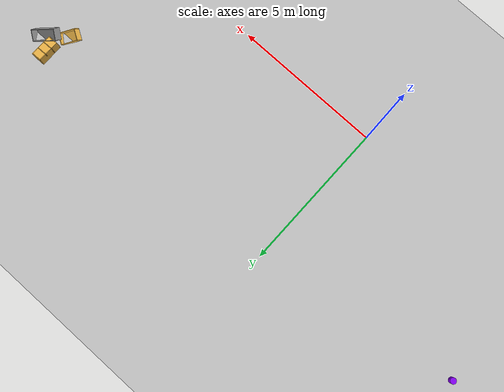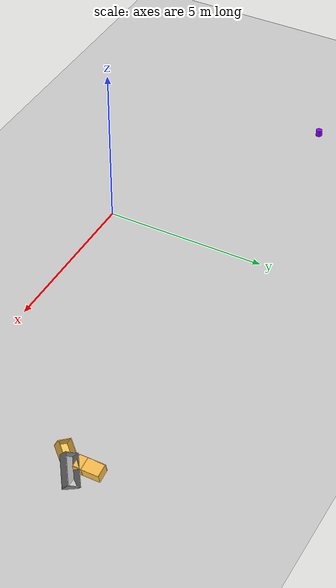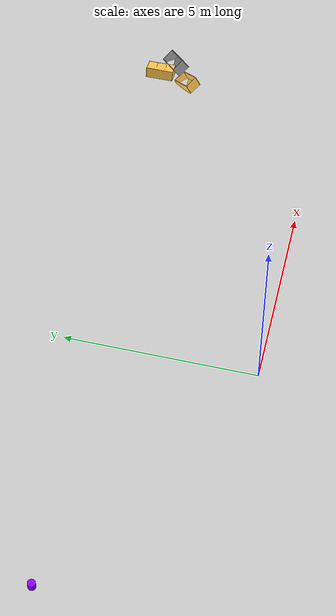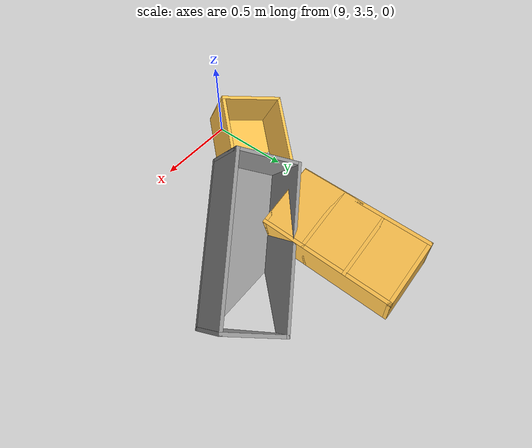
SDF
<sdf version="1.6">
 <world name="default">
  <light name="sun" type="directional">
   <pose>0 0 10 0 -0 0</pose>
   <diffuse>0.8 0.8 0.8 1</diffuse>
   <specular>0.1 0.1 0.1 1</specular>
   <attenuation>
    <range>1000</range>
    <constant>0.9</constant>
    <linear>0.01</linear>
    <quadratic>0.001</quadratic>
   </attenuation>
   <direction>-0.5 0.5 -1</direction>
  </light>
  <model name="ground_plane">
   <static>1</static>
   <link name="link">
    <collision name="collision">
     <geometry><plane><normal>0 0 1</normal><size>100 100</size></plane></geometry>
     <surface><friction><ode><mu>100</mu><mu2>50</mu2></ode></friction></surface>
    </collision>
    <visual name="visual">
     <cast_shadows>0</cast_shadows>
     <geometry><plane><normal>0 0 1</normal><size>100 100</size></plane></geometry>
     <material>
      <script><uri>file://media/materials/scripts/gazebo.material</uri><name>Gazebo/Grey</name></script>
     </material>
    </visual>
   </link>
  </model>
  <gravity>0 0 -9.8</gravity>
  <magnetic_field>6e-06 2.3e-05 -4.2e-05</magnetic_field>
  <atmosphere type="adiabatic"/>
  <physics name="default_physics" default="0" type="ode">
   <max_step_size>0.001</max_step_size>
   <real_time_factor>1</real_time_factor>
   <real_time_update_rate>1000</real_time_update_rate>
  </physics>
  <scene><ambient>0.4 0.4 0.4 1</ambient><background>0.7 0.7 0.7 1</background><shadows>1</shadows></scene>
  <spherical_coordinates>
   <surface_model>EARTH_WGS84</surface_model>
   <latitude_deg>0</latitude_deg>
   <longitude_deg>0</longitude_deg>
   <elevation>0</elevation>
   <heading_deg>0</heading_deg>
  </spherical_coordinates>
  <model name="cylinder_vb">
   <link name="link_0">
    <pose>0 0 0.1 0 -0 0</pose>
    <inertial>
     <mass>1</mass>
     <inertia><ixx>0.145833</ixx><ixy>0</ixy><ixz>0</ixz><iyy>0.145833</iyy><iyz>0</iyz><izz>0.125</izz></inertia>
    </inertial>
    <visual name="visual">
     <geometry><cylinder><radius>0.1</radius><length>0.2</length></cylinder></geometry>
     <material>
      <lighting>1</lighting>
      <script><uri>file://media/materials/scripts/gazebo.material</uri><name>Gazebo/Grey</name></script>
      <ambient>0.549 0 1 1</ambient>
      <diffuse>0.549 0 1 1</diffuse>
      <specular>0 0 0 1</specular>
      <emissive>0 0 0 1</emissive>
      <shader type="vertex"><normal_map>__default__</normal_map></shader>
     </material>
    </visual>
    <collision name="collision">
     <geometry><cylinder><radius>0.1</radius><length>0.2</length></cylinder></geometry>
     <surface>
      <friction>
       <ode><mu>1</mu><mu2>1</mu2><fdir1>0 0 0</fdir1><slip1>0</slip1><slip2>0</slip2></ode>
       <torsional>
        <coefficient>1</coefficient>
        <patch_radius>0</patch_radius>
        <surface_radius>0</surface_radius>
        <use_patch_radius>1</use_patch_radius>
        <ode><slip>0</slip></ode>
       </torsional>
      </friction>
      <bounce><restitution_coefficient>0</restitution_coefficient><threshold>1e+06</threshold></bounce>
      <contact>
       <collide_without_contact>0</collide_without_contact>
       <collide_without_contact_bitmask>1</collide_without_contact_bitmask>
       <collide_bitmask>1</collide_bitmask>
       <ode>
        <soft_cfm>0</soft_cfm>
        <soft_erp>0.2</soft_erp>
        <kp>1e+13</kp>
        <kd>1</kd>
        <max_vel>0.01</max_vel>
        <min_depth>0</min_depth>
       </ode>
       <bullet>
        <split_impulse>1</split_impulse>
        <split_impulse_penetration_threshold>-0.01</split_impulse_penetration_threshold>
        <soft_cfm>0</soft_cfm>
        <soft_erp>0.2</soft_erp>
        <kp>1e+13</kp>
        <kd>1</kd>
       </bullet>
      </contact>
     </surface>
    </collision>
   </link>
   <static>1</static>
   <pose>-6.71795 3.89111 0 0 -0 0</pose>
  </model>
  <light name="user_point_light_0" type="point">
   <pose>-3.61281 3.00521 1 0 -0 0</pose>
   <diffuse>0.5 0.5 0.5 1</diffuse>
   <specular>0.1 0.1 0.1 1</specular>
   <attenuation>
    <range>20</range>
    <constant>0.5</constant>
    <linear>0.01</linear>
    <quadratic>0.001</quadratic>
   </attenuation>
   <cast_shadows>0</cast_shadows>
   <direction>0 0 -1</direction>
  </light>
  <model name="Wall_Cabinet_15x30">
   <pose>9.53822 4.71815 0.132606 0 -1.33375 0</pose>
   <link name="Wall_0">
    <pose>0 0.374 0.192 0 -0 0</pose>
    <inertial>
     <mass>0.9882</mass>
     <inertia><ixx>0.0072</ixx><iyy>0.0194</iyy><izz>0.0122</izz><ixy>0</ixy><ixz>0</ixz><iyz>0</iyz></inertia>
    </inertial>
    <collision name="Wall_0_Collision"><geometry><box><size>0.296 0.02 0.384</size></box></geometry></collision>
    <visual name="Wall_0_Visual">
     <geometry><box><size>0.296 0.02 0.384</size></box></geometry>
     <material>
      <script><uri>file://media/materials/scripts/gazebo.material</uri><name>Gazebo/Grey</name></script>
      <ambient>1 0.764706 0.305882 1</ambient>
     </material>
    </visual>
   </link>
   <joint name="0_2" type="fixed">
    <pose>0 0 0.192 0 -0 0</pose>
    <parent>Wall_2</parent>
    <child>Wall_0</child>
    <axis>
     <xyz>0 0 1</xyz>
     <use_parent_model_frame>0</use_parent_model_frame>
     <limit><lower>-1e+16</lower><upper>1e+16</upper></limit>
    </axis>
   </joint>
   <joint name="0_4" type="fixed">
    <pose>0 0 -0.192 0 -0 0</pose>
    <parent>Wall_4</parent>
    <child>Wall_0</child>
    <axis>
     <xyz>0 0 1</xyz>
     <use_parent_model_frame>0</use_parent_model_frame>
     <limit><lower>-1e+16</lower><upper>1e+16</upper></limit>
    </axis>
   </joint>
   <joint name="0_15" type="fixed">
    <pose>0.148 0 0 0 -0 0</pose>
    <parent>Wall_15</parent>
    <child>Wall_0</child>
    <axis>
     <xyz>1 0 0</xyz>
     <use_parent_model_frame>0</use_parent_model_frame>
     <limit><lower>-1e+16</lower><upper>1e+16</upper></limit>
    </axis>
   </joint>
   <link name="Wall_11">
    <pose>0 -0.132768 0.192 0 -0 0</pose>
    <inertial>
     <mass>0.9882</mass>
     <inertia><ixx>0.0072</ixx><iyy>0.0194</iyy><izz>0.0122</izz><ixy>0</ixy><ixz>0</ixz><iyz>0</iyz></inertia>
    </inertial>
    <collision name="Wall_11_Collision"><geometry><box><size>0.296 0.02 0.384</size></box></geometry></collision>
    <visual name="Wall_11_Visual">
     <geometry><box><size>0.296 0.02 0.384</size></box></geometry>
     <material>
      <script><uri>file://media/materials/scripts/gazebo.material</uri><name>Gazebo/Grey</name></script>
      <ambient>1 0.764706 0.305882 1</ambient>
     </material>
    </visual>
   </link>
   <joint name="11_2" type="fixed">
    <pose>0 0 0.192 0 -0 0</pose>
    <parent>Wall_2</parent>
    <child>Wall_11</child>
    <axis>
     <xyz>0 0 1</xyz>
     <use_parent_model_frame>0</use_parent_model_frame>
     <limit><lower>-1e+16</lower><upper>1e+16</upper></limit>
    </axis>
   </joint>
   <joint name="11_4" type="fixed">
    <pose>0 0 -0.192 0 -0 0</pose>
    <parent>Wall_4</parent>
    <child>Wall_11</child>
    <axis>
     <xyz>0 0 1</xyz>
     <use_parent_model_frame>0</use_parent_model_frame>
     <limit><lower>-1e+16</lower><upper>1e+16</upper></limit>
    </axis>
   </joint>
   <joint name="11_15" type="fixed">
    <pose>0.148 0 0 0 -0 0</pose>
    <parent>Wall_15</parent>
    <child>Wall_11</child>
    <axis>
     <xyz>1 0 0</xyz>
     <use_parent_model_frame>0</use_parent_model_frame>
     <limit><lower>-1e+16</lower><upper>1e+16</upper></limit>
    </axis>
   </joint>
   <link name="Wall_15">
    <pose>0.138 0 0.19 0 -0 0</pose>
    <inertial>
     <mass>2.5241</mass>
     <inertia><ixx>0.0305</ixx><iyy>0.1229</iyy><izz>0.1532</izz><ixy>0</ixy><ixz>0</ixz><iyz>0</iyz></inertia>
    </inertial>
    <collision name="Wall_15_Collision"><geometry><box><size>0.02 0.764 0.38</size></box></geometry></collision>
    <visual name="Wall_15_Visual">
     <geometry><box><size>0.02 0.764 0.38</size></box></geometry>
     <material>
      <script><uri>file://media/materials/scripts/gazebo.material</uri><name>Gazebo/Grey</name></script>
      <ambient>1 0.764706 0.305882 1</ambient>
     </material>
    </visual>
   </link>
   <joint name="15_2" type="fixed">
    <pose>0 0 0.19 0 -0 0</pose>
    <parent>Wall_2</parent>
    <child>Wall_15</child>
    <axis>
     <xyz>0 0 1</xyz>
     <use_parent_model_frame>0</use_parent_model_frame>
     <limit><lower>-1e+16</lower><upper>1e+16</upper></limit>
    </axis>
   </joint>
   <joint name="15_4" type="fixed">
    <pose>0 0 -0.19 0 -0 0</pose>
    <parent>Wall_4</parent>
    <child>Wall_15</child>
    <axis>
     <xyz>0 0 1</xyz>
     <use_parent_model_frame>0</use_parent_model_frame>
     <limit><lower>-1e+16</lower><upper>1e+16</upper></limit>
    </axis>
   </joint>
   <link name="Wall_2">
    <pose>0 0 0.374 0 -0 0</pose>
    <inertial>
     <mass>1.9765</mass>
     <inertia><ixx>0.0145</ixx><iyy>0.1116</iyy><izz>0.0972</izz><ixy>0</ixy><ixz>0</ixz><iyz>0</iyz></inertia>
    </inertial>
    <collision name="Wall_2_Collision"><geometry><box><size>0.296 0.768 0.02</size></box></geometry></collision>
    <visual name="Wall_2_Visual">
     <geometry><box><size>0.296 0.768 0.02</size></box></geometry>
     <material>
      <script><uri>file://media/materials/scripts/gazebo.material</uri><name>Gazebo/Grey</name></script>
      <ambient>1 0.764706 0.305882 1</ambient>
     </material>
    </visual>
   </link>
   <link name="Wall_4">
    <pose>0 0 0.01 0 -0 0</pose>
    <inertial>
     <mass>1.9765</mass>
     <inertia><ixx>0.0145</ixx><iyy>0.1116</iyy><izz>0.0972</izz><ixy>0</ixy><ixz>0</ixz><iyz>0</iyz></inertia>
    </inertial>
    <collision name="Wall_4_Collision"><geometry><box><size>0.296 0.768 0.02</size></box></geometry></collision>
    <visual name="Wall_4_Visual">
     <geometry><box><size>0.296 0.768 0.02</size></box></geometry>
     <material>
      <script><uri>file://media/materials/scripts/gazebo.material</uri><name>Gazebo/Grey</name></script>
      <ambient>1 0.764706 0.305882 1</ambient>
     </material>
    </visual>
    <pose>-0.181124 0 0 0 0 -1.5708</pose>
   </link>
   <link name="Wall_6">
    <pose>0 -0.374 0.192 0 -0 0</pose>
    <inertial>
     <mass>0.9882</mass>
     <inertia><ixx>0.0072</ixx><iyy>0.0194</iyy><izz>0.0122</izz><ixy>0</ixy><ixz>0</ixz><iyz>0</iyz></inertia>
    </inertial>
    <collision name="Wall_6_Collision"><geometry><box><size>0.296 0.02 0.384</size></box></geometry></collision>
    <visual name="Wall_6_Visual">
     <geometry><box><size>0.296 0.02 0.384</size></box></geometry>
     <material>
      <script><uri>file://media/materials/scripts/gazebo.material</uri><name>Gazebo/Grey</name></script>
      <ambient>1 0.764706 0.305882 1</ambient>
     </material>
    </visual>
   </link>
   <joint name="6_2" type="fixed">
    <pose>0 0 0.192 0 -0 0</pose>
    <parent>Wall_2</parent>
    <child>Wall_6</child>
    <axis>
     <xyz>0 0 1</xyz>
     <use_parent_model_frame>0</use_parent_model_frame>
     <limit><lower>-1e+16</lower><upper>1e+16</upper></limit>
    </axis>
   </joint>
   <joint name="6_4" type="fixed">
    <pose>0 0 -0.192 0 -0 0</pose>
    <parent>Wall_4</parent>
    <child>Wall_6</child>
    <axis>
     <xyz>0 0 1</xyz>
     <use_parent_model_frame>0</use_parent_model_frame>
     <limit><lower>-1e+16</lower><upper>1e+16</upper></limit>
    </axis>
   </joint>
   <joint name="6_15" type="fixed">
    <pose>0.148 0 0 0 -0 0</pose>
    <parent>Wall_15</parent>
    <child>Wall_6</child>
    <axis>
     <xyz>1 0 0</xyz>
     <use_parent_model_frame>0</use_parent_model_frame>
     <limit><lower>-1e+16</lower><upper>1e+16</upper></limit>
    </axis>
   </joint>
   <link name="Wall_8">
    <pose>0 0.120833 0.192 0 -0 0</pose>
    <inertial>
     <mass>0.9882</mass>
     <inertia><ixx>0.0072</ixx><iyy>0.0194</iyy><izz>0.0122</izz><ixy>0</ixy><ixz>0</ixz><iyz>0</iyz></inertia>
    </inertial>
    <collision name="Wall_8_Collision"><geometry><box><size>0.296 0.02 0.384</size></box></geometry></collision>
    <visual name="Wall_8_Visual">
     <geometry><box><size>0.296 0.02 0.384</size></box></geometry>
     <material>
      <script><uri>file://media/materials/scripts/gazebo.material</uri><name>Gazebo/Grey</name></script>
      <ambient>1 0.764706 0.305882 1</ambient>
     </material>
    </visual>
   </link>
   <joint name="8_2" type="fixed">
    <pose>0 0 0.192 0 -0 0</pose>
    <parent>Wall_2</parent>
    <child>Wall_8</child>
    <axis>
     <xyz>0 0 1</xyz>
     <use_parent_model_frame>0</use_parent_model_frame>
     <limit><lower>-1e+16</lower><upper>1e+16</upper></limit>
    </axis>
   </joint>
   <joint name="8_4" type="fixed">
    <pose>0 0 -0.192 0 -0 0</pose>
    <parent>Wall_4</parent>
    <child>Wall_8</child>
    <axis>
     <xyz>0 0 1</xyz>
     <use_parent_model_frame>0</use_parent_model_frame>
     <limit><lower>-1e+16</lower><upper>1e+16</upper></limit>
    </axis>
   </joint>
   <joint name="8_15" type="fixed">
    <pose>0.148 0 0 0 -0 0</pose>
    <parent>Wall_15</parent>
    <child>Wall_8</child>
    <axis>
     <xyz>1 0 0</xyz>
     <use_parent_model_frame>0</use_parent_model_frame>
     <limit><lower>-1e+16</lower><upper>1e+16</upper></limit>
    </axis>
   </joint>
   <static>1</static>
  </model>
  <model name="Wall_Cabinet_24x15M">
   <link name="Wall_41">
    <pose>0 0 0.01 0 -0 0</pose>
    <inertial>
     <mass>1.4983</mass>
     <inertia><ixx>0.011</ixx><iyy>0.0571</iyy><izz>0.0462</izz><ixy>0</ixy><ixz>0</ixz><iyz>0</iyz></inertia>
    </inertial>
    <collision name="Wall_41_Collision"><geometry><box><size>0.608 0.296 0.02</size></box></geometry></collision>
    <visual name="Wall_41_Visual">
     <geometry><box><size>0.608 0.296 0.02</size></box></geometry>
     <material>
      <script><uri>file://media/materials/scripts/gazebo.material</uri><name>Gazebo/Grey</name></script>
      <ambient>1 0.764706 0.305882 1</ambient>
     </material>
    </visual>
    <pose>0.000184 0.181953 0 0 -0 0</pose>
   </link>
   <joint name="41_43" type="fixed">
    <pose>-0.304 0 0 0 -0 0</pose>
    <parent>Wall_43</parent>
    <child>Wall_41</child>
    <axis>
     <xyz>0 0 1</xyz>
     <use_parent_model_frame>0</use_parent_model_frame>
     <limit><lower>-1e+16</lower><upper>1e+16</upper></limit>
    </axis>
   </joint>
   <joint name="41_45" type="fixed">
    <pose>0.304 0 0 0 -0 0</pose>
    <parent>Wall_45</parent>
    <child>Wall_41</child>
    <axis>
     <xyz>0 0 1</xyz>
     <use_parent_model_frame>0</use_parent_model_frame>
     <limit><lower>-1e+16</lower><upper>1e+16</upper></limit>
    </axis>
   </joint>
   <joint name="41_49" type="fixed">
    <pose>0 -0.148 0 0 -0 0</pose>
    <parent>Wall_49</parent>
    <child>Wall_41</child>
    <axis>
     <xyz>0 0 1</xyz>
     <use_parent_model_frame>0</use_parent_model_frame>
     <limit><lower>-1e+16</lower><upper>1e+16</upper></limit>
    </axis>
   </joint>
   <link name="Wall_43">
    <pose>-0.294 0 0.192 0 -0 0</pose>
    <inertial>
     <mass>0.9463</mass>
     <inertia><ixx>0.0069</ixx><iyy>0.0185</iyy><izz>0.0117</izz><ixy>0</ixy><ixz>0</ixz><iyz>0</iyz></inertia>
    </inertial>
    <collision name="Wall_43_Collision"><geometry><box><size>0.02 0.296 0.384</size></box></geometry></collision>
    <visual name="Wall_43_Visual">
     <geometry><box><size>0.02 0.296 0.384</size></box></geometry>
     <material>
      <script><uri>file://media/materials/scripts/gazebo.material</uri><name>Gazebo/Grey</name></script>
      <ambient>1 0.764706 0.305882 1</ambient>
     </material>
    </visual>
   </link>
   <link name="Wall_45">
    <pose>0.294 0 0.192 0 -0 0</pose>
    <inertial>
     <mass>0.9463</mass>
     <inertia><ixx>0.0069</ixx><iyy>0.0185</iyy><izz>0.0117</izz><ixy>0</ixy><ixz>0</ixz><iyz>0</iyz></inertia>
    </inertial>
    <collision name="Wall_45_Collision"><geometry><box><size>0.02 0.296 0.384</size></box></geometry></collision>
    <visual name="Wall_45_Visual">
     <geometry><box><size>0.02 0.296 0.384</size></box></geometry>
     <material>
      <script><uri>file://media/materials/scripts/gazebo.material</uri><name>Gazebo/Grey</name></script>
      <ambient>1 0.764706 0.305882 1</ambient>
     </material>
    </visual>
   </link>
   <link name="Wall_47">
    <pose>0 0 0.374 0 -0 0</pose>
    <inertial>
     <mass>1.4983</mass>
     <inertia><ixx>0.011</ixx><iyy>0.0571</iyy><izz>0.0462</izz><ixy>0</ixy><ixz>0</ixz><iyz>0</iyz></inertia>
    </inertial>
    <collision name="Wall_47_Collision"><geometry><box><size>0.608 0.296 0.02</size></box></geometry></collision>
    <visual name="Wall_47_Visual">
     <geometry><box><size>0.608 0.296 0.02</size></box></geometry>
     <material>
      <script><uri>file://media/materials/scripts/gazebo.material</uri><name>Gazebo/Grey</name></script>
      <ambient>1 0.764706 0.305882 1</ambient>
     </material>
    </visual>
   </link>
   <joint name="47_43" type="fixed">
    <pose>-0.304 0 0 0 -0 0</pose>
    <parent>Wall_43</parent>
    <child>Wall_47</child>
    <axis>
     <xyz>0 0 1</xyz>
     <use_parent_model_frame>0</use_parent_model_frame>
     <limit><lower>-1e+16</lower><upper>1e+16</upper></limit>
    </axis>
   </joint>
   <joint name="47_45" type="fixed">
    <pose>0.304 0 0 0 -0 0</pose>
    <parent>Wall_45</parent>
    <child>Wall_47</child>
    <axis>
     <xyz>0 0 1</xyz>
     <use_parent_model_frame>0</use_parent_model_frame>
     <limit><lower>-1e+16</lower><upper>1e+16</upper></limit>
    </axis>
   </joint>
   <joint name="47_49" type="fixed">
    <pose>0 -0.148 0 0 -0 0</pose>
    <parent>Wall_49</parent>
    <child>Wall_47</child>
    <axis>
     <xyz>0 0 1</xyz>
     <use_parent_model_frame>0</use_parent_model_frame>
     <limit><lower>-1e+16</lower><upper>1e+16</upper></limit>
    </axis>
   </joint>
   <link name="Wall_49">
    <pose>0 -0.138 0.19 0 -0 0</pose>
    <inertial>
     <mass>1.9108</mass>
     <inertia><ixx>0.0231</ixx><iyy>0.0582</iyy><izz>0.0811</izz><ixy>0</ixy><ixz>0</ixz><iyz>0</iyz></inertia>
    </inertial>
    <collision name="Wall_49_Collision"><geometry><box><size>0.604 0.02 0.38</size></box></geometry></collision>
    <visual name="Wall_49_Visual">
     <geometry><box><size>0.604 0.02 0.38</size></box></geometry>
     <material>
      <script><uri>file://media/materials/scripts/gazebo.material</uri><name>Gazebo/Grey</name></script>
      <ambient>1 0.764706 0.305882 1</ambient>
     </material>
    </visual>
   </link>
   <joint name="49_43" type="fixed">
    <pose>-0.302 0 0 0 -0 0</pose>
    <parent>Wall_41</parent>
    <child>Wall_49</child>
    <axis>
     <xyz>0 1 0</xyz>
     <use_parent_model_frame>0</use_parent_model_frame>
     <limit><lower>-1e+16</lower><upper>1e+16</upper></limit>
    </axis>
   </joint>
   <joint name="49_45" type="fixed">
    <pose>0.302 0 0 0 -0 0</pose>
    <parent>Wall_45</parent>
    <child>Wall_49</child>
    <axis>
     <xyz>0 1 0</xyz>
     <use_parent_model_frame>0</use_parent_model_frame>
     <limit><lower>-1e+16</lower><upper>1e+16</upper></limit>
    </axis>
   </joint>
   <static>1</static>
   <pose>8.97422 3.99024 0.087283 1.27649 0.370376 0.873671</pose>
  </model>
  <model name="Wall_Cabinet_36x15W">
   <link name="Wall_0">
    <pose>0 0 0.01 0 -0 0</pose>
    <inertial>
     <mass>1.9796</mass>
     <inertia><ixx>0.0145</ixx><iyy>0.1511</iyy><izz>0.1367</izz><ixy>0</ixy><ixz>0</ixz><iyz>0</iyz></inertia>
    </inertial>
    <collision name="Wall_0_Collision"><geometry><box><size>0.91 0.296 0.02</size></box></geometry></collision>
    <visual name="Wall_0_Visual">
     <geometry><box><size>0.91 0.296 0.02</size></box></geometry>
     <material>
      <script><uri>file://media/materials/scripts/gazebo.material</uri><name>Gazebo/Grey</name></script>
      <ambient>1 1 1 1</ambient>
     </material>
    </visual>
   </link>
   <joint name="0_2" type="fixed">
    <pose>-0.455 0 0 0 -0 0</pose>
    <parent>Wall_2</parent>
    <child>Wall_0</child>
    <axis>
     <xyz>0 0 1</xyz>
     <use_parent_model_frame>0</use_parent_model_frame>
     <limit><lower>-1e+16</lower><upper>1e+16</upper></limit>
    </axis>
   </joint>
   <joint name="0_4" type="fixed">
    <pose>0.455 0 0 0 -0 0</pose>
    <parent>Wall_4</parent>
    <child>Wall_0</child>
    <axis>
     <xyz>0 0 1</xyz>
     <use_parent_model_frame>0</use_parent_model_frame>
     <limit><lower>-1e+16</lower><upper>1e+16</upper></limit>
    </axis>
   </joint>
   <joint name="0_8" type="fixed">
    <pose>0 -0.148 0 0 -0 0</pose>
    <parent>Wall_8</parent>
    <child>Wall_0</child>
    <axis>
     <xyz>0 0 1</xyz>
     <use_parent_model_frame>0</use_parent_model_frame>
     <limit><lower>-1e+16</lower><upper>1e+16</upper></limit>
    </axis>
   </joint>
   <link name="Wall_2">
    <pose>-0.445 0 0.192 0 -0 0</pose>
    <inertial>
     <mass>0.8353</mass>
     <inertia><ixx>0.0061</ixx><iyy>0.0164</iyy><izz>0.0103</izz><ixy>0</ixy><ixz>0</ixz><iyz>0</iyz></inertia>
    </inertial>
    <collision name="Wall_2_Collision"><geometry><box><size>0.02 0.296 0.384</size></box></geometry></collision>
    <visual name="Wall_2_Visual">
     <geometry><box><size>0.02 0.296 0.384</size></box></geometry>
     <material>
      <script><uri>file://media/materials/scripts/gazebo.material</uri><name>Gazebo/Grey</name></script>
      <ambient>1 1 1 1</ambient>
     </material>
    </visual>
   </link>
   <link name="Wall_4">
    <pose>0.445 0 0.192 0 -0 0</pose>
    <inertial>
     <mass>0.8353</mass>
     <inertia><ixx>0.0061</ixx><iyy>0.0164</iyy><izz>0.0103</izz><ixy>0</ixy><ixz>0</ixz><iyz>0</iyz></inertia>
    </inertial>
    <collision name="Wall_4_Collision"><geometry><box><size>0.02 0.296 0.384</size></box></geometry></collision>
    <visual name="Wall_4_Visual">
     <geometry><box><size>0.02 0.296 0.384</size></box></geometry>
     <material>
      <script><uri>file://media/materials/scripts/gazebo.material</uri><name>Gazebo/Grey</name></script>
      <ambient>1 1 1 1</ambient>
     </material>
    </visual>
   </link>
   <link name="Wall_6">
    <pose>0 0 0.374 0 -0 0</pose>
    <inertial>
     <mass>1.9796</mass>
     <inertia><ixx>0.0145</ixx><iyy>0.1511</iyy><izz>0.1367</izz><ixy>0</ixy><ixz>0</ixz><iyz>0</iyz></inertia>
    </inertial>
    <collision name="Wall_6_Collision"><geometry><box><size>0.91 0.296 0.02</size></box></geometry></collision>
    <visual name="Wall_6_Visual">
     <geometry><box><size>0.91 0.296 0.02</size></box></geometry>
     <material>
      <script><uri>file://media/materials/scripts/gazebo.material</uri><name>Gazebo/Grey</name></script>
      <ambient>1 1 1 1</ambient>
     </material>
    </visual>
   </link>
   <joint name="6_2" type="fixed">
    <pose>-0.455 0 0 0 -0 0</pose>
    <parent>Wall_2</parent>
    <child>Wall_6</child>
    <axis>
     <xyz>0 0 1</xyz>
     <use_parent_model_frame>0</use_parent_model_frame>
     <limit><lower>-1e+16</lower><upper>1e+16</upper></limit>
    </axis>
   </joint>
   <joint name="6_4" type="fixed">
    <pose>0.455 0 0 0 -0 0</pose>
    <parent>Wall_4</parent>
    <child>Wall_6</child>
    <axis>
     <xyz>0 0 1</xyz>
     <use_parent_model_frame>0</use_parent_model_frame>
     <limit><lower>-1e+16</lower><upper>1e+16</upper></limit>
    </axis>
   </joint>
   <joint name="6_8" type="fixed">
    <pose>0 -0.148 0 0 -0 0</pose>
    <parent>Wall_8</parent>
    <child>Wall_6</child>
    <axis>
     <xyz>0 0 1</xyz>
     <use_parent_model_frame>0</use_parent_model_frame>
     <limit><lower>-1e+16</lower><upper>1e+16</upper></limit>
    </axis>
   </joint>
   <link name="Wall_8">
    <pose>0 -0.138 0.19 0 -0 0</pose>
    <inertial>
     <mass>2.5302</mass>
     <inertia><ixx>0.0305</ixx><iyy>0.1732</iyy><izz>0.2035</izz><ixy>0</ixy><ixz>0</ixz><iyz>0</iyz></inertia>
    </inertial>
    <collision name="Wall_8_Collision"><geometry><box><size>0.906 0.02 0.38</size></box></geometry></collision>
    <visual name="Wall_8_Visual">
     <geometry><box><size>0.906 0.02 0.38</size></box></geometry>
     <material>
      <script><uri>file://media/materials/scripts/gazebo.material</uri><name>Gazebo/Grey</name></script>
      <ambient>1 1 1 1</ambient>
     </material>
    </visual>
   </link>
   <joint name="8_2" type="fixed">
    <pose>-0.453 0 0 0 -0 0</pose>
    <parent>Wall_2</parent>
    <child>Wall_8</child>
    <axis>
     <xyz>0 1 0</xyz>
     <use_parent_model_frame>0</use_parent_model_frame>
     <limit><lower>-1e+16</lower><upper>1e+16</upper></limit>
    </axis>
   </joint>
   <joint name="8_4" type="fixed">
    <pose>0.453 0 0 0 -0 0</pose>
    <parent>Wall_4</parent>
    <child>Wall_8</child>
    <axis>
     <xyz>0 1 0</xyz>
     <use_parent_model_frame>0</use_parent_model_frame>
     <limit><lower>-1e+16</lower><upper>1e+16</upper></limit>
    </axis>
   </joint>
   <static>1</static>
   <pose>9.82981 4.24136 0.321664 2.12203 -0.426822 -2.54897</pose>
  </model>
 </world>
</sdf>
